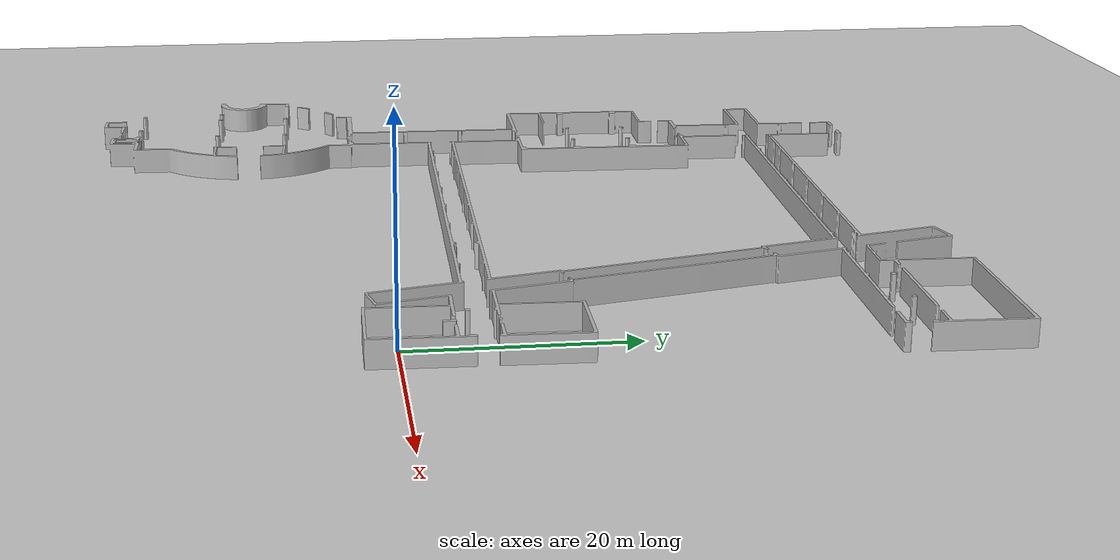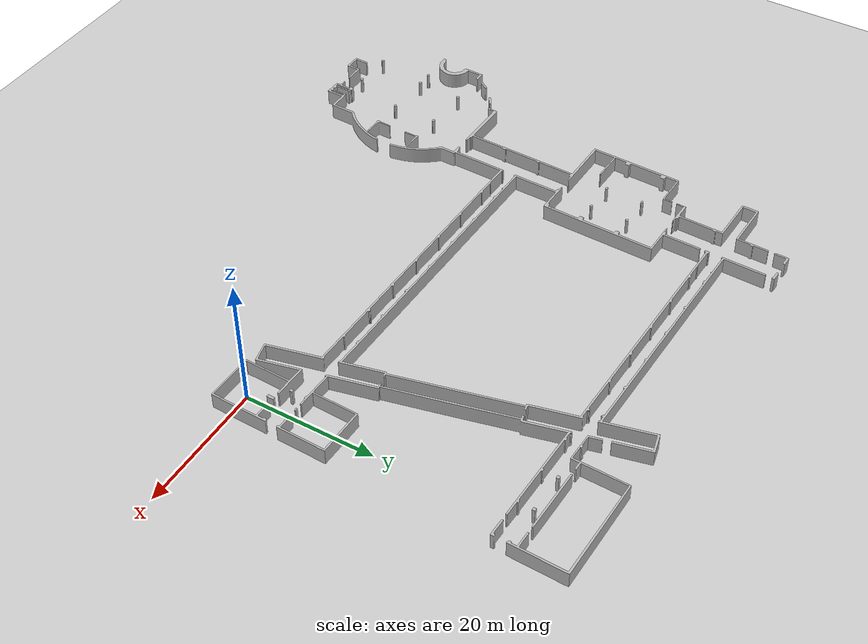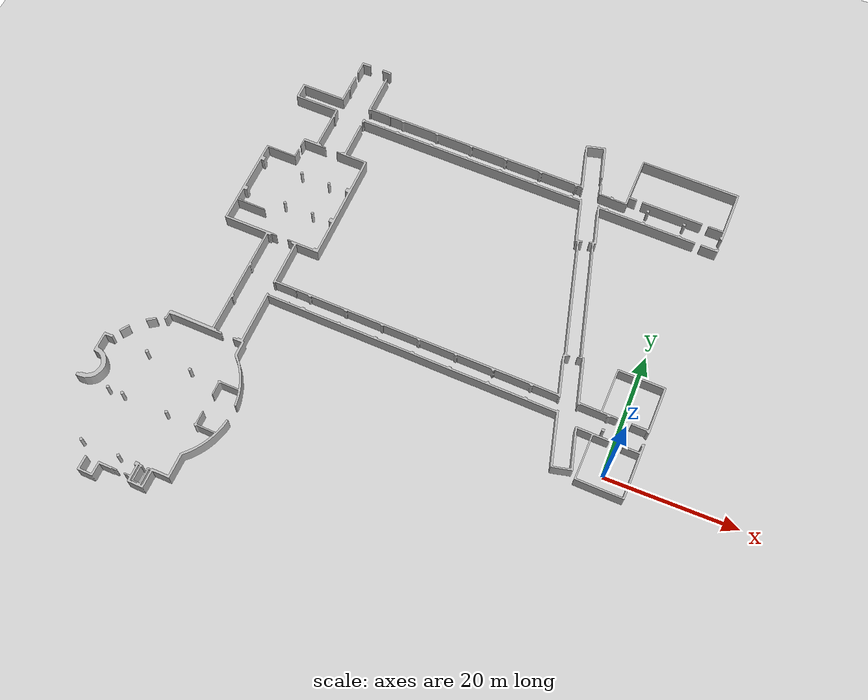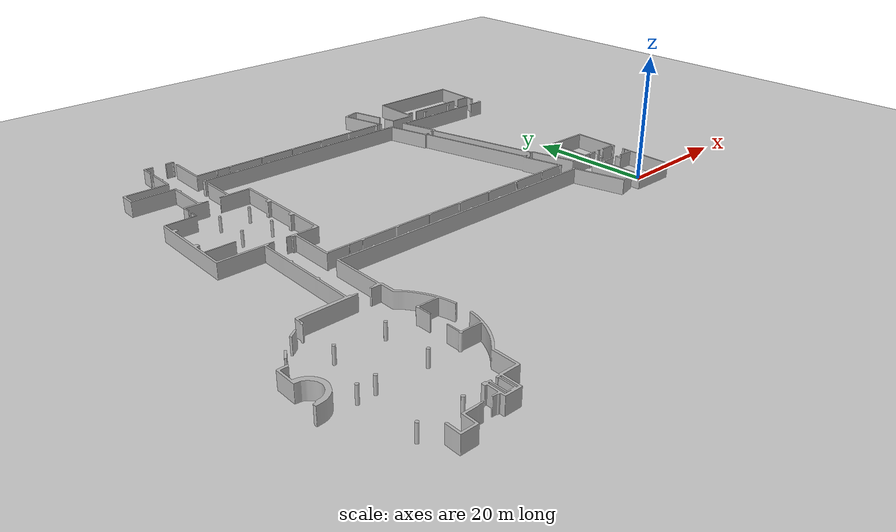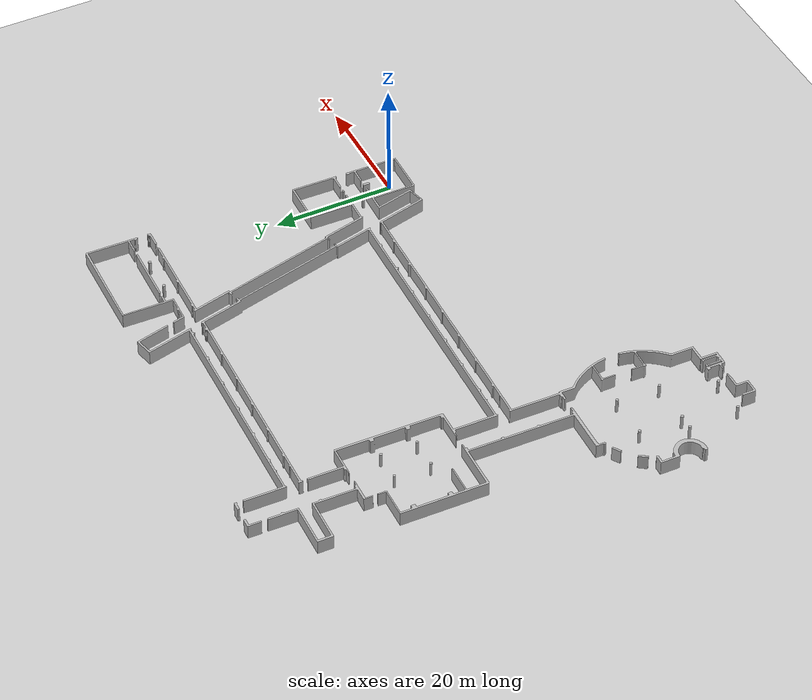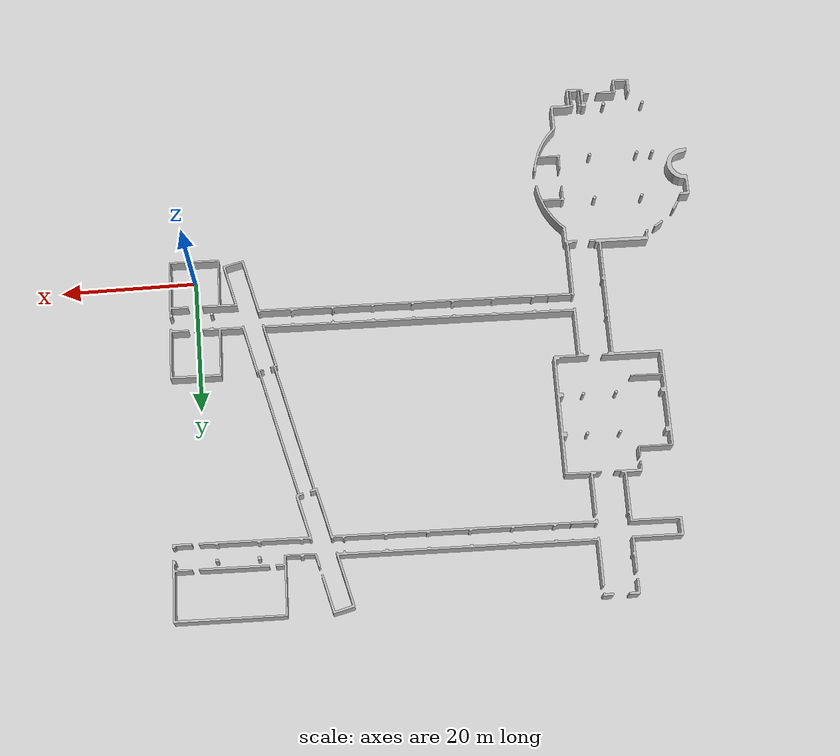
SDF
<?xml version='1.0'?>
<sdf version='1.5'>
  <world name="default">
    <include>
      <uri>model://sun</uri>
    </include>
    <include>
      <uri>model://ground_plane</uri>
    </include>
    <include>
      <uri>model://brsu_ground_floor</uri>
    </include>
  </world>
</sdf>

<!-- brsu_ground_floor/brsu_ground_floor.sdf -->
<sdf version='1.5'>
 <model name="brsu_ground_floor">
    <pose>-85 -30 1.25  0 0 0</pose>
    <static>true</static>
    <link name="body">
      <visual name="visual">
        <geometry>
          <mesh><uri>file://brsu_ground_floor.stl</uri></mesh>
        </geometry>
      </visual>
      <collision name="collision">
        <geometry>
          <mesh><uri>file://brsu_ground_floor.stl</uri></mesh>
        </geometry>
      </collision>
    </link>
  </model>
</sdf>
